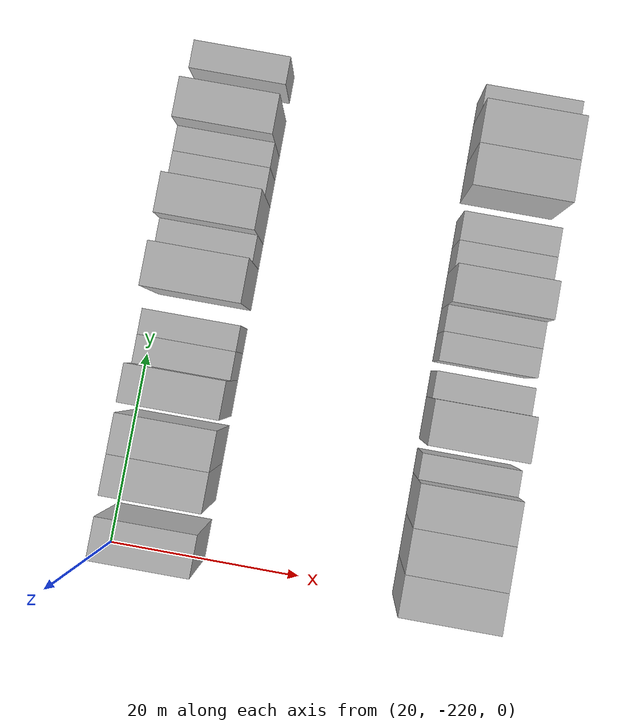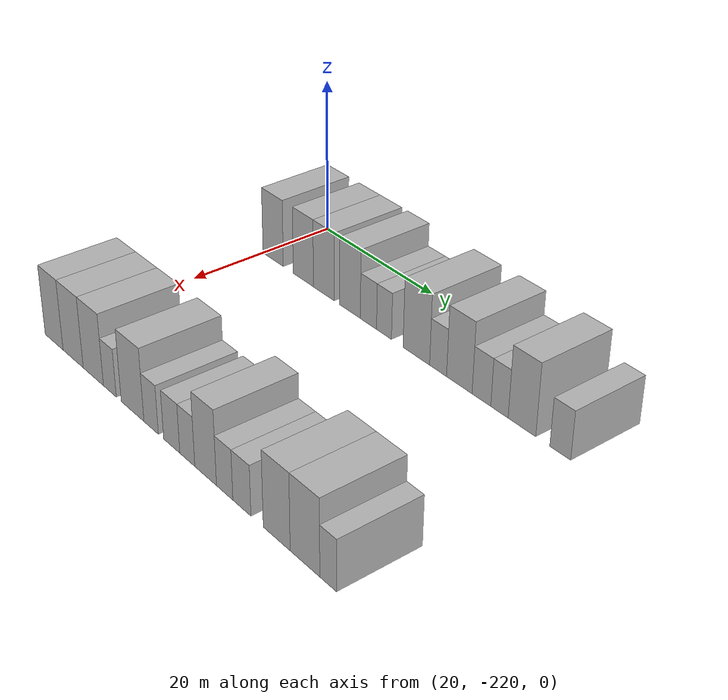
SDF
<sdf version="1.6">
 <world name="default">
  <model name="building_1">
   <static>1</static>
   <pose>25.0000 -217.9095 0 0.000000 0.000000 0.000000</pose>
   <link name="link">
    <pose>0 0 4.50 0 0 0</pose>
    <collision name="collision"><geometry><box><size>10.0000 4.1810 9.0000</size></box></geometry></collision>
    <visual name="visual">
     <cast_shadows>0</cast_shadows>
     <geometry><box><size>10.0000 4.1810 9.0000</size></box></geometry>
     <material>
      <script>
       <uri>model://HANNAS_wall/materials/scripts</uri>
       <uri>model://HANNAS_wall/materials/textures</uri>
       <name>vrc/HANNAS_wall</name>
      </script>
     </material>
    </visual>
   </link>
  </model>
  <model name="building_2">
   <static>1</static>
   <pose>25.0000 -211.8305 0 0.000000 0.000000 0.000000</pose>
   <link name="link">
    <pose>0 0 4.50 0 0 0</pose>
    <collision name="collision"><geometry><box><size>10.0000 3.9770 9.0000</size></box></geometry></collision>
    <visual name="visual">
     <cast_shadows>0</cast_shadows>
     <geometry><box><size>10.0000 3.9770 9.0000</size></box></geometry>
     <material>
      <script>
       <uri>model://HANNAS_wall/materials/scripts</uri>
       <uri>model://HANNAS_wall/materials/textures</uri>
       <name>vrc/HANNAS_wall</name>
      </script>
     </material>
    </visual>
   </link>
  </model>
  <model name="building_3">
   <static>1</static>
   <pose>25.0000 -207.8415 0 0.000000 0.000000 0.000000</pose>
   <link name="link">
    <pose>0 0 4.50 0 0 0</pose>
    <collision name="collision"><geometry><box><size>10.0000 4.0009 9.0000</size></box></geometry></collision>
    <visual name="visual">
     <cast_shadows>0</cast_shadows>
     <geometry><box><size>10.0000 4.0009 9.0000</size></box></geometry>
     <material>
      <script>
       <uri>model://HANNAS_wall/materials/scripts</uri>
       <uri>model://HANNAS_wall/materials/textures</uri>
       <name>vrc/HANNAS_wall</name>
      </script>
     </material>
    </visual>
   </link>
  </model>
  <model name="building_4">
   <static>1</static>
   <pose>25.0000 -202.9239 0 0.000000 0.000000 0.000000</pose>
   <link name="link">
    <pose>0 0 4.50 0 0 0</pose>
    <collision name="collision"><geometry><box><size>10.0000 3.8345 9.0000</size></box></geometry></collision>
    <visual name="visual">
     <cast_shadows>0</cast_shadows>
     <geometry><box><size>10.0000 3.8345 9.0000</size></box></geometry>
     <material>
      <script>
       <uri>model://HANNAS_wall/materials/scripts</uri>
       <uri>model://HANNAS_wall/materials/textures</uri>
       <name>vrc/HANNAS_wall</name>
      </script>
     </material>
    </visual>
   </link>
  </model>
  <model name="building_5">
   <static>1</static>
   <pose>25.0000 -199.5439 0 0.000000 0.000000 0.000000</pose>
   <link name="link">
    <pose>0 0 3.00 0 0 0</pose>
    <collision name="collision"><geometry><box><size>10.0000 2.9255 6.0000</size></box></geometry></collision>
    <visual name="visual">
     <cast_shadows>0</cast_shadows>
     <geometry><box><size>10.0000 2.9255 6.0000</size></box></geometry>
     <material>
      <script>
       <uri>model://HANNAS_wall/materials/scripts</uri>
       <uri>model://HANNAS_wall/materials/textures</uri>
       <name>vrc/HANNAS_wall</name>
      </script>
     </material>
    </visual>
   </link>
  </model>
  <model name="building_6">
   <static>1</static>
   <pose>25.0000 -196.7667 0 0.000000 0.000000 0.000000</pose>
   <link name="link">
    <pose>0 0 3.00 0 0 0</pose>
    <collision name="collision"><geometry><box><size>10.0000 2.6289 6.0000</size></box></geometry></collision>
    <visual name="visual">
     <cast_shadows>0</cast_shadows>
     <geometry><box><size>10.0000 2.6289 6.0000</size></box></geometry>
     <material>
      <script>
       <uri>model://HANNAS_wall/materials/scripts</uri>
       <uri>model://HANNAS_wall/materials/textures</uri>
       <name>vrc/HANNAS_wall</name>
      </script>
     </material>
    </visual>
   </link>
  </model>
  <model name="building_7">
   <static>1</static>
   <pose>25.0000 -191.2194 0 0.000000 0.000000 0.000000</pose>
   <link name="link">
    <pose>0 0 4.50 0 0 0</pose>
    <collision name="collision"><geometry><box><size>10.0000 4.4657 9.0000</size></box></geometry></collision>
    <visual name="visual">
     <cast_shadows>0</cast_shadows>
     <geometry><box><size>10.0000 4.4657 9.0000</size></box></geometry>
     <material>
      <script>
       <uri>model://HANNAS_wall/materials/scripts</uri>
       <uri>model://HANNAS_wall/materials/textures</uri>
       <name>vrc/HANNAS_wall</name>
      </script>
     </material>
    </visual>
   </link>
  </model>
  <model name="building_8">
   <static>1</static>
   <pose>25.0000 -187.6018 0 0.000000 0.000000 0.000000</pose>
   <link name="link">
    <pose>0 0 3.00 0 0 0</pose>
    <collision name="collision"><geometry><box><size>10.0000 2.7696 6.0000</size></box></geometry></collision>
    <visual name="visual">
     <cast_shadows>0</cast_shadows>
     <geometry><box><size>10.0000 2.7696 6.0000</size></box></geometry>
     <material>
      <script>
       <uri>model://HANNAS_wall/materials/scripts</uri>
       <uri>model://HANNAS_wall/materials/textures</uri>
       <name>vrc/HANNAS_wall</name>
      </script>
     </material>
    </visual>
   </link>
  </model>
  <model name="building_9">
   <static>1</static>
   <pose>25.0000 -184.1889 0 0.000000 0.000000 0.000000</pose>
   <link name="link">
    <pose>0 0 4.50 0 0 0</pose>
    <collision name="collision"><geometry><box><size>10.0000 4.0561 9.0000</size></box></geometry></collision>
    <visual name="visual">
     <cast_shadows>0</cast_shadows>
     <geometry><box><size>10.0000 4.0561 9.0000</size></box></geometry>
     <material>
      <script>
       <uri>model://HANNAS_wall/materials/scripts</uri>
       <uri>model://HANNAS_wall/materials/textures</uri>
       <name>vrc/HANNAS_wall</name>
      </script>
     </material>
    </visual>
   </link>
  </model>
  <model name="building_10">
   <static>1</static>
   <pose>25.0000 -180.7169 0 0.000000 0.000000 0.000000</pose>
   <link name="link">
    <pose>0 0 3.00 0 0 0</pose>
    <collision name="collision"><geometry><box><size>10.0000 2.8880 6.0000</size></box></geometry></collision>
    <visual name="visual">
     <cast_shadows>0</cast_shadows>
     <geometry><box><size>10.0000 2.8880 6.0000</size></box></geometry>
     <material>
      <script>
       <uri>model://HANNAS_wall/materials/scripts</uri>
       <uri>model://HANNAS_wall/materials/textures</uri>
       <name>vrc/HANNAS_wall</name>
      </script>
     </material>
    </visual>
   </link>
  </model>
  <model name="building_11">
   <static>1</static>
   <pose>25.0000 -177.9663 0 0.000000 0.000000 0.000000</pose>
   <link name="link">
    <pose>0 0 3.00 0 0 0</pose>
    <collision name="collision"><geometry><box><size>10.0000 2.6132 6.0000</size></box></geometry></collision>
    <visual name="visual">
     <cast_shadows>0</cast_shadows>
     <geometry><box><size>10.0000 2.6132 6.0000</size></box></geometry>
     <material>
      <script>
       <uri>model://HANNAS_wall/materials/scripts</uri>
       <uri>model://HANNAS_wall/materials/textures</uri>
       <name>vrc/HANNAS_wall</name>
      </script>
     </material>
    </visual>
   </link>
  </model>
  <model name="building_12">
   <static>1</static>
   <pose>25.0000 -174.6368 0 0.000000 0.000000 0.000000</pose>
   <link name="link">
    <pose>0 0 4.50 0 0 0</pose>
    <collision name="collision"><geometry><box><size>10.0000 4.0458 9.0000</size></box></geometry></collision>
    <visual name="visual">
     <cast_shadows>0</cast_shadows>
     <geometry><box><size>10.0000 4.0458 9.0000</size></box></geometry>
     <material>
      <script>
       <uri>model://HANNAS_wall/materials/scripts</uri>
       <uri>model://HANNAS_wall/materials/textures</uri>
       <name>vrc/HANNAS_wall</name>
      </script>
     </material>
    </visual>
   </link>
  </model>
  <model name="building_13">
   <static>1</static>
   <pose>25.0000 -169.1580 0 0.000000 0.000000 0.000000</pose>
   <link name="link">
    <pose>0 0 3.00 0 0 0</pose>
    <collision name="collision"><geometry><box><size>10.0000 2.9118 6.0000</size></box></geometry></collision>
    <visual name="visual">
     <cast_shadows>0</cast_shadows>
     <geometry><box><size>10.0000 2.9118 6.0000</size></box></geometry>
     <material>
      <script>
       <uri>model://HANNAS_wall/materials/scripts</uri>
       <uri>model://HANNAS_wall/materials/textures</uri>
       <name>vrc/HANNAS_wall</name>
      </script>
     </material>
    </visual>
   </link>
  </model>
  <model name="building_111">
   <static>1</static>
   <pose>55.0000 -217.9803 0 0.000000 0.000000 0.000000</pose>
   <link name="link">
    <pose>0 0 4.50 0 0 0</pose>
    <collision name="collision"><geometry><box><size>10.0000 4.0393 9.0000</size></box></geometry></collision>
    <visual name="visual">
     <cast_shadows>0</cast_shadows>
     <geometry><box><size>10.0000 4.0393 9.0000</size></box></geometry>
     <material>
      <script>
       <uri>model://HANNAS_wall/materials/scripts</uri>
       <uri>model://HANNAS_wall/materials/textures</uri>
       <name>vrc/HANNAS_wall</name>
      </script>
     </material>
    </visual>
   </link>
  </model>
  <model name="building_112">
   <static>1</static>
   <pose>55.0000 -213.7556 0 0.000000 0.000000 0.000000</pose>
   <link name="link">
    <pose>0 0 4.50 0 0 0</pose>
    <collision name="collision"><geometry><box><size>10.0000 4.4101 9.0000</size></box></geometry></collision>
    <visual name="visual">
     <cast_shadows>0</cast_shadows>
     <geometry><box><size>10.0000 4.4101 9.0000</size></box></geometry>
     <material>
      <script>
       <uri>model://HANNAS_wall/materials/scripts</uri>
       <uri>model://HANNAS_wall/materials/textures</uri>
       <name>vrc/HANNAS_wall</name>
      </script>
     </material>
    </visual>
   </link>
  </model>
  <model name="building_113">
   <static>1</static>
   <pose>55.0000 -209.4050 0 0.000000 0.000000 0.000000</pose>
   <link name="link">
    <pose>0 0 4.50 0 0 0</pose>
    <collision name="collision"><geometry><box><size>10.0000 4.2912 9.0000</size></box></geometry></collision>
    <visual name="visual">
     <cast_shadows>0</cast_shadows>
     <geometry><box><size>10.0000 4.2912 9.0000</size></box></geometry>
     <material>
      <script>
       <uri>model://HANNAS_wall/materials/scripts</uri>
       <uri>model://HANNAS_wall/materials/textures</uri>
       <name>vrc/HANNAS_wall</name>
      </script>
     </material>
    </visual>
   </link>
  </model>
  <model name="building_114">
   <static>1</static>
   <pose>55.0000 -205.9422 0 0.000000 0.000000 0.000000</pose>
   <link name="link">
    <pose>0 0 3.00 0 0 0</pose>
    <collision name="collision"><geometry><box><size>10.0000 2.6344 6.0000</size></box></geometry></collision>
    <visual name="visual">
     <cast_shadows>0</cast_shadows>
     <geometry><box><size>10.0000 2.6344 6.0000</size></box></geometry>
     <material>
      <script>
       <uri>model://HANNAS_wall/materials/scripts</uri>
       <uri>model://HANNAS_wall/materials/textures</uri>
       <name>vrc/HANNAS_wall</name>
      </script>
     </material>
    </visual>
   </link>
  </model>
  <model name="building_115">
   <static>1</static>
   <pose>55.0000 -201.3809 0 0.000000 0.000000 0.000000</pose>
   <link name="link">
    <pose>0 0 4.50 0 0 0</pose>
    <collision name="collision"><geometry><box><size>10.0000 4.4881 9.0000</size></box></geometry></collision>
    <visual name="visual">
     <cast_shadows>0</cast_shadows>
     <geometry><box><size>10.0000 4.4881 9.0000</size></box></geometry>
     <material>
      <script>
       <uri>model://HANNAS_wall/materials/scripts</uri>
       <uri>model://HANNAS_wall/materials/textures</uri>
       <name>vrc/HANNAS_wall</name>
      </script>
     </material>
    </visual>
   </link>
  </model>
  <model name="building_116">
   <static>1</static>
   <pose>55.0000 -197.7536 0 0.000000 0.000000 0.000000</pose>
   <link name="link">
    <pose>0 0 3.00 0 0 0</pose>
    <collision name="collision"><geometry><box><size>10.0000 2.7665 6.0000</size></box></geometry></collision>
    <visual name="visual">
     <cast_shadows>0</cast_shadows>
     <geometry><box><size>10.0000 2.7665 6.0000</size></box></geometry>
     <material>
      <script>
       <uri>model://HANNAS_wall/materials/scripts</uri>
       <uri>model://HANNAS_wall/materials/textures</uri>
       <name>vrc/HANNAS_wall</name>
      </script>
     </material>
    </visual>
   </link>
  </model>
  <model name="building_117">
   <static>1</static>
   <pose>55.0000 -193.8765 0 0.000000 0.000000 0.000000</pose>
   <link name="link">
    <pose>0 0 3.00 0 0 0</pose>
    <collision name="collision"><geometry><box><size>10.0000 2.9877 6.0000</size></box></geometry></collision>
    <visual name="visual">
     <cast_shadows>0</cast_shadows>
     <geometry><box><size>10.0000 2.9877 6.0000</size></box></geometry>
     <material>
      <script>
       <uri>model://HANNAS_wall/materials/scripts</uri>
       <uri>model://HANNAS_wall/materials/textures</uri>
       <name>vrc/HANNAS_wall</name>
      </script>
     </material>
    </visual>
   </link>
  </model>
  <model name="building_118">
   <static>1</static>
   <pose>55.0000 -191.0268 0 0.000000 0.000000 0.000000</pose>
   <link name="link">
    <pose>0 0 3.00 0 0 0</pose>
    <collision name="collision"><geometry><box><size>10.0000 2.7118 6.0000</size></box></geometry></collision>
    <visual name="visual">
     <cast_shadows>0</cast_shadows>
     <geometry><box><size>10.0000 2.7118 6.0000</size></box></geometry>
     <material>
      <script>
       <uri>model://HANNAS_wall/materials/scripts</uri>
       <uri>model://HANNAS_wall/materials/textures</uri>
       <name>vrc/HANNAS_wall</name>
      </script>
     </material>
    </visual>
   </link>
  </model>
  <model name="building_119">
   <static>1</static>
   <pose>55.0000 -187.7705 0 0.000000 0.000000 0.000000</pose>
   <link name="link">
    <pose>0 0 4.50 0 0 0</pose>
    <collision name="collision"><geometry><box><size>10.0000 3.8008 9.0000</size></box></geometry></collision>
    <visual name="visual">
     <cast_shadows>0</cast_shadows>
     <geometry><box><size>10.0000 3.8008 9.0000</size></box></geometry>
     <material>
      <script>
       <uri>model://HANNAS_wall/materials/scripts</uri>
       <uri>model://HANNAS_wall/materials/textures</uri>
       <name>vrc/HANNAS_wall</name>
      </script>
     </material>
    </visual>
   </link>
  </model>
  <model name="building_120">
   <static>1</static>
   <pose>55.0000 -184.4775 0 0.000000 0.000000 0.000000</pose>
   <link name="link">
    <pose>0 0 3.00 0 0 0</pose>
    <collision name="collision"><geometry><box><size>10.0000 2.7850 6.0000</size></box></geometry></collision>
    <visual name="visual">
     <cast_shadows>0</cast_shadows>
     <geometry><box><size>10.0000 2.7850 6.0000</size></box></geometry>
     <material>
      <script>
       <uri>model://HANNAS_wall/materials/scripts</uri>
       <uri>model://HANNAS_wall/materials/textures</uri>
       <name>vrc/HANNAS_wall</name>
      </script>
     </material>
    </visual>
   </link>
  </model>
  <model name="building_121">
   <static>1</static>
   <pose>55.0000 -181.5906 0 0.000000 0.000000 0.000000</pose>
   <link name="link">
    <pose>0 0 3.00 0 0 0</pose>
    <collision name="collision"><geometry><box><size>10.0000 2.9889 6.0000</size></box></geometry></collision>
    <visual name="visual">
     <cast_shadows>0</cast_shadows>
     <geometry><box><size>10.0000 2.9889 6.0000</size></box></geometry>
     <material>
      <script>
       <uri>model://HANNAS_wall/materials/scripts</uri>
       <uri>model://HANNAS_wall/materials/textures</uri>
       <name>vrc/HANNAS_wall</name>
      </script>
     </material>
    </visual>
   </link>
  </model>
  <model name="building_122">
   <static>1</static>
   <pose>55.0000 -175.9861 0 0.000000 0.000000 0.000000</pose>
   <link name="link">
    <pose>0 0 4.50 0 0 0</pose>
    <collision name="collision"><geometry><box><size>10.0000 4.2200 9.0000</size></box></geometry></collision>
    <visual name="visual">
     <cast_shadows>0</cast_shadows>
     <geometry><box><size>10.0000 4.2200 9.0000</size></box></geometry>
     <material>
      <script>
       <uri>model://HANNAS_wall/materials/scripts</uri>
       <uri>model://HANNAS_wall/materials/textures</uri>
       <name>vrc/HANNAS_wall</name>
      </script>
     </material>
    </visual>
   </link>
  </model>
  <model name="building_123">
   <static>1</static>
   <pose>55.0000 -171.6526 0 0.000000 0.000000 0.000000</pose>
   <link name="link">
    <pose>0 0 4.50 0 0 0</pose>
    <collision name="collision"><geometry><box><size>10.0000 4.4470 9.0000</size></box></geometry></collision>
    <visual name="visual">
     <cast_shadows>0</cast_shadows>
     <geometry><box><size>10.0000 4.4470 9.0000</size></box></geometry>
     <material>
      <script>
       <uri>model://HANNAS_wall/materials/scripts</uri>
       <uri>model://HANNAS_wall/materials/textures</uri>
       <name>vrc/HANNAS_wall</name>
      </script>
     </material>
    </visual>
   </link>
  </model>
  <model name="building_124">
   <static>1</static>
   <pose>55.0000 -168.2030 0 0.000000 0.000000 0.000000</pose>
   <link name="link">
    <pose>0 0 3.00 0 0 0</pose>
    <collision name="collision"><geometry><box><size>10.0000 2.4524 6.0000</size></box></geometry></collision>
    <visual name="visual">
     <cast_shadows>0</cast_shadows>
     <geometry><box><size>10.0000 2.4524 6.0000</size></box></geometry>
     <material>
      <script>
       <uri>model://HANNAS_wall/materials/scripts</uri>
       <uri>model://HANNAS_wall/materials/textures</uri>
       <name>vrc/HANNAS_wall</name>
      </script>
     </material>
    </visual>
   </link>
  </model>
 </world>
</sdf>
